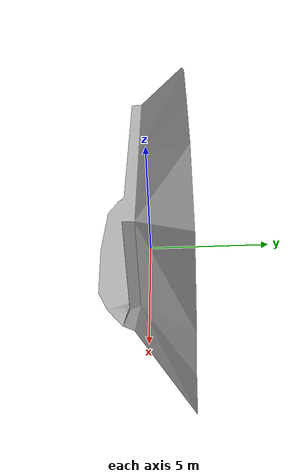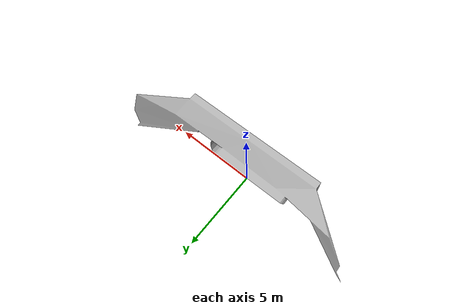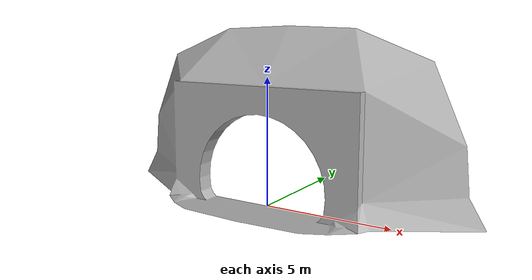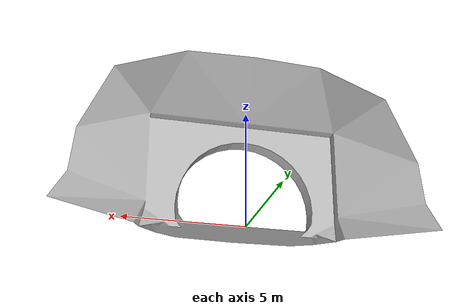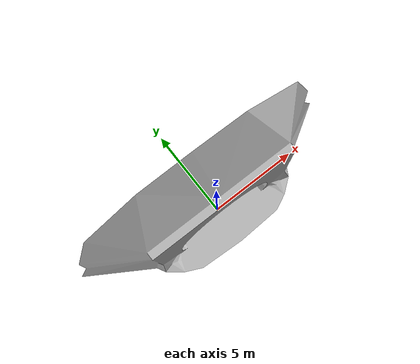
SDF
<?xml version="1.0" ?>
<sdf version="1.6">
  <model name="mine_entrance">
    <static>true</static>
    <link name="link">
      <collision name="collision">
        <geometry>
          <mesh>
            <scale>0.01 0.01 0.01</scale>
            <uri>model://mine_entrance/meshes/Entrance.obj</uri>
          </mesh>
        </geometry>
      </collision>
      <visual name="visual">
        <geometry>
          <mesh>
            <scale>0.01 0.01 0.01</scale>
            <uri>model://mine_entrance/meshes/Entrance.obj</uri>
          </mesh>
        </geometry>
      </visual>
    </link>
  </model>
</sdf>
